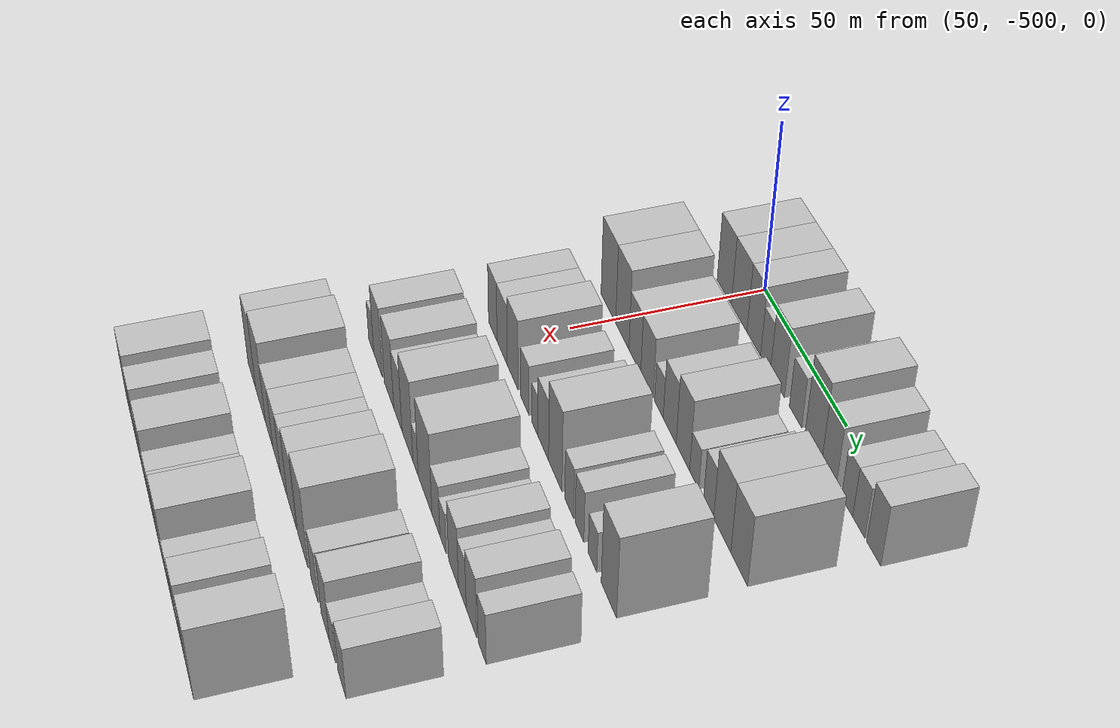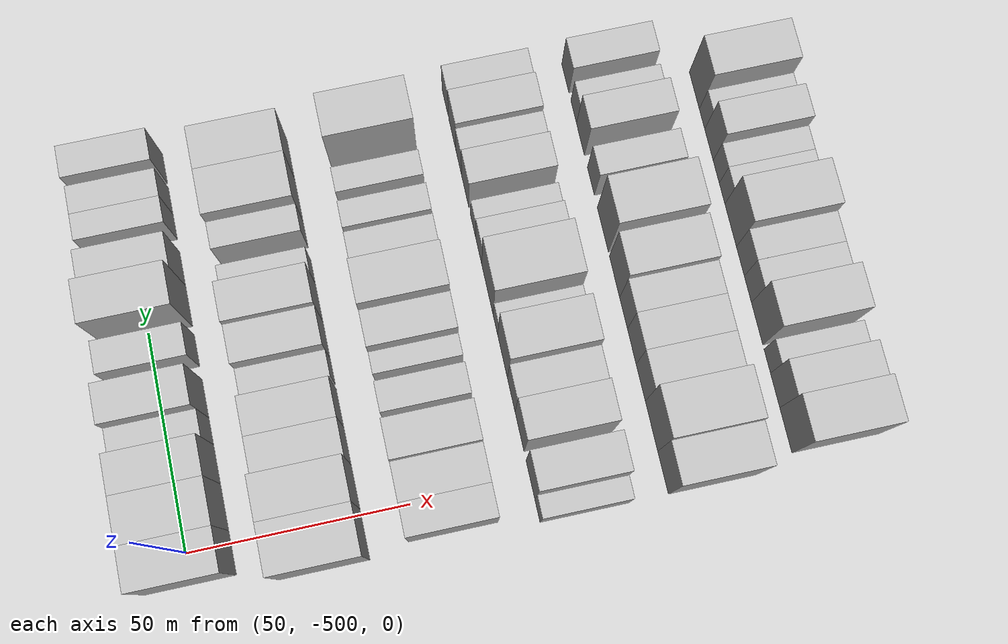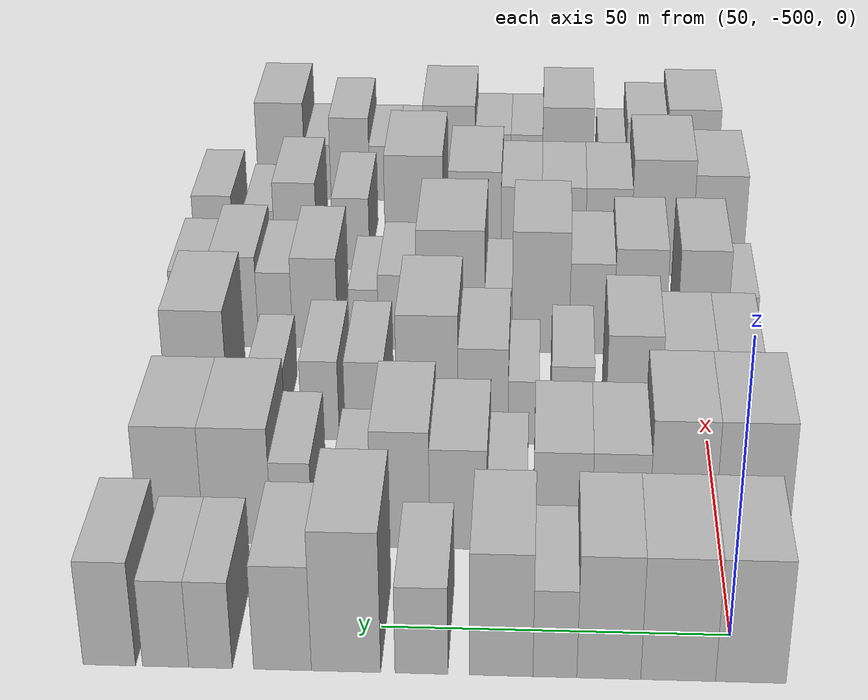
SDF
<sdf version="1.6">
 <world name="default">
  <model name="building_1">
   <static>1</static>
   <pose>50.0000 -502.1199 0 0.000000 0.000000 0.000000</pose>
   <link name="link">
    <pose>0 0 10.50 0 0 0</pose>
    <collision name="collision"><geometry><box><size>20.0000 9.7603 21.0000</size></box></geometry></collision>
    <visual name="visual">
     <cast_shadows>0</cast_shadows>
     <geometry><box><size>20.0000 9.7603 21.0000</size></box></geometry>
     <material>
      <script>
       <uri>model://HANNAS_wall/materials/scripts</uri>
       <uri>model://HANNAS_wall/materials/textures</uri>
       <name>vrc/HANNAS_wall</name>
      </script>
     </material>
    </visual>
   </link>
  </model>
  <model name="building_2">
   <static>1</static>
   <pose>50.0000 -492.0480 0 0.000000 0.000000 0.000000</pose>
   <link name="link">
    <pose>0 0 10.50 0 0 0</pose>
    <collision name="collision"><geometry><box><size>20.0000 10.3834 21.0000</size></box></geometry></collision>
    <visual name="visual">
     <cast_shadows>0</cast_shadows>
     <geometry><box><size>20.0000 10.3834 21.0000</size></box></geometry>
     <material>
      <script>
       <uri>model://HANNAS_wall/materials/scripts</uri>
       <uri>model://HANNAS_wall/materials/textures</uri>
       <name>vrc/HANNAS_wall</name>
      </script>
     </material>
    </visual>
   </link>
  </model>
  <model name="building_3">
   <static>1</static>
   <pose>50.0000 -482.4147 0 0.000000 0.000000 0.000000</pose>
   <link name="link">
    <pose>0 0 10.50 0 0 0</pose>
    <collision name="collision"><geometry><box><size>20.0000 8.8831 21.0000</size></box></geometry></collision>
    <visual name="visual">
     <cast_shadows>0</cast_shadows>
     <geometry><box><size>20.0000 8.8831 21.0000</size></box></geometry>
     <material>
      <script>
       <uri>model://HANNAS_wall/materials/scripts</uri>
       <uri>model://HANNAS_wall/materials/textures</uri>
       <name>vrc/HANNAS_wall</name>
      </script>
     </material>
    </visual>
   </link>
  </model>
  <model name="building_4">
   <static>1</static>
   <pose>50.0000 -474.9057 0 0.000000 0.000000 0.000000</pose>
   <link name="link">
    <pose>0 0 7.50 0 0 0</pose>
    <collision name="collision"><geometry><box><size>20.0000 6.1351 15.0000</size></box></geometry></collision>
    <visual name="visual">
     <cast_shadows>0</cast_shadows>
     <geometry><box><size>20.0000 6.1351 15.0000</size></box></geometry>
     <material>
      <script>
       <uri>model://HANNAS_wall/materials/scripts</uri>
       <uri>model://HANNAS_wall/materials/textures</uri>
       <name>vrc/HANNAS_wall</name>
      </script>
     </material>
    </visual>
   </link>
  </model>
  <model name="building_5">
   <static>1</static>
   <pose>50.0000 -467.4099 0 0.000000 0.000000 0.000000</pose>
   <link name="link">
    <pose>0 0 10.50 0 0 0</pose>
    <collision name="collision"><geometry><box><size>20.0000 8.8565 21.0000</size></box></geometry></collision>
    <visual name="visual">
     <cast_shadows>0</cast_shadows>
     <geometry><box><size>20.0000 8.8565 21.0000</size></box></geometry>
     <material>
      <script>
       <uri>model://HANNAS_wall/materials/scripts</uri>
       <uri>model://HANNAS_wall/materials/textures</uri>
       <name>vrc/HANNAS_wall</name>
      </script>
     </material>
    </visual>
   </link>
  </model>
  <model name="building_6">
   <static>1</static>
   <pose>50.0000 -456.2871 0 0.000000 0.000000 0.000000</pose>
   <link name="link">
    <pose>0 0 7.50 0 0 0</pose>
    <collision name="collision"><geometry><box><size>20.0000 7.3890 15.0000</size></box></geometry></collision>
    <visual name="visual">
     <cast_shadows>0</cast_shadows>
     <geometry><box><size>20.0000 7.3890 15.0000</size></box></geometry>
     <material>
      <script>
       <uri>model://HANNAS_wall/materials/scripts</uri>
       <uri>model://HANNAS_wall/materials/textures</uri>
       <name>vrc/HANNAS_wall</name>
      </script>
     </material>
    </visual>
   </link>
  </model>
  <model name="building_7">
   <static>1</static>
   <pose>50.0000 -445.7349 0 0.000000 0.000000 0.000000</pose>
   <link name="link">
    <pose>0 0 12.00 0 0 0</pose>
    <collision name="collision"><geometry><box><size>20.0000 9.7154 24.0000</size></box></geometry></collision>
    <visual name="visual">
     <cast_shadows>0</cast_shadows>
     <geometry><box><size>20.0000 9.7154 24.0000</size></box></geometry>
     <material>
      <script>
       <uri>model://HANNAS_wall/materials/scripts</uri>
       <uri>model://HANNAS_wall/materials/textures</uri>
       <name>vrc/HANNAS_wall</name>
      </script>
     </material>
    </visual>
   </link>
  </model>
  <model name="building_8">
   <static>1</static>
   <pose>50.0000 -436.8042 0 0.000000 0.000000 0.000000</pose>
   <link name="link">
    <pose>0 0 9.00 0 0 0</pose>
    <collision name="collision"><geometry><box><size>20.0000 8.1459 18.0000</size></box></geometry></collision>
    <visual name="visual">
     <cast_shadows>0</cast_shadows>
     <geometry><box><size>20.0000 8.1459 18.0000</size></box></geometry>
     <material>
      <script>
       <uri>model://HANNAS_wall/materials/scripts</uri>
       <uri>model://HANNAS_wall/materials/textures</uri>
       <name>vrc/HANNAS_wall</name>
      </script>
     </material>
    </visual>
   </link>
  </model>
  <model name="building_9">
   <static>1</static>
   <pose>50.0000 -426.6734 0 0.000000 0.000000 0.000000</pose>
   <link name="link">
    <pose>0 0 7.50 0 0 0</pose>
    <collision name="collision"><geometry><box><size>20.0000 6.1158 15.0000</size></box></geometry></collision>
    <visual name="visual">
     <cast_shadows>0</cast_shadows>
     <geometry><box><size>20.0000 6.1158 15.0000</size></box></geometry>
     <material>
      <script>
       <uri>model://HANNAS_wall/materials/scripts</uri>
       <uri>model://HANNAS_wall/materials/textures</uri>
       <name>vrc/HANNAS_wall</name>
      </script>
     </material>
    </visual>
   </link>
  </model>
  <model name="building_10">
   <static>1</static>
   <pose>50.0000 -420.3480 0 0.000000 0.000000 0.000000</pose>
   <link name="link">
    <pose>0 0 7.50 0 0 0</pose>
    <collision name="collision"><geometry><box><size>20.0000 6.5350 15.0000</size></box></geometry></collision>
    <visual name="visual">
     <cast_shadows>0</cast_shadows>
     <geometry><box><size>20.0000 6.5350 15.0000</size></box></geometry>
     <material>
      <script>
       <uri>model://HANNAS_wall/materials/scripts</uri>
       <uri>model://HANNAS_wall/materials/textures</uri>
       <name>vrc/HANNAS_wall</name>
      </script>
     </material>
    </visual>
   </link>
  </model>
  <model name="building_11">
   <static>1</static>
   <pose>50.0000 -412.3741 0 0.000000 0.000000 0.000000</pose>
   <link name="link">
    <pose>0 0 9.00 0 0 0</pose>
    <collision name="collision"><geometry><box><size>20.0000 7.4129 18.0000</size></box></geometry></collision>
    <visual name="visual">
     <cast_shadows>0</cast_shadows>
     <geometry><box><size>20.0000 7.4129 18.0000</size></box></geometry>
     <material>
      <script>
       <uri>model://HANNAS_wall/materials/scripts</uri>
       <uri>model://HANNAS_wall/materials/textures</uri>
       <name>vrc/HANNAS_wall</name>
      </script>
     </material>
    </visual>
   </link>
  </model>
  <model name="building_120">
   <static>1</static>
   <pose>79.0000 -504.3831 0 0.000000 0.000000 0.000000</pose>
   <link name="link">
    <pose>0 0 12.00 0 0 0</pose>
    <collision name="collision"><geometry><box><size>20.0000 11.2338 24.0000</size></box></geometry></collision>
    <visual name="visual">
     <cast_shadows>0</cast_shadows>
     <geometry><box><size>20.0000 11.2338 24.0000</size></box></geometry>
     <material>
      <script>
       <uri>model://HANNAS_wall/materials/scripts</uri>
       <uri>model://HANNAS_wall/materials/textures</uri>
       <name>vrc/HANNAS_wall</name>
      </script>
     </material>
    </visual>
   </link>
  </model>
  <model name="building_121">
   <static>1</static>
   <pose>79.0000 -493.8356 0 0.000000 0.000000 0.000000</pose>
   <link name="link">
    <pose>0 0 12.00 0 0 0</pose>
    <collision name="collision"><geometry><box><size>20.0000 9.8611 24.0000</size></box></geometry></collision>
    <visual name="visual">
     <cast_shadows>0</cast_shadows>
     <geometry><box><size>20.0000 9.8611 24.0000</size></box></geometry>
     <material>
      <script>
       <uri>model://HANNAS_wall/materials/scripts</uri>
       <uri>model://HANNAS_wall/materials/textures</uri>
       <name>vrc/HANNAS_wall</name>
      </script>
     </material>
    </visual>
   </link>
  </model>
  <model name="building_122">
   <static>1</static>
   <pose>79.0000 -484.6019 0 0.000000 0.000000 0.000000</pose>
   <link name="link">
    <pose>0 0 9.00 0 0 0</pose>
    <collision name="collision"><geometry><box><size>20.0000 8.6065 18.0000</size></box></geometry></collision>
    <visual name="visual">
     <cast_shadows>0</cast_shadows>
     <geometry><box><size>20.0000 8.6065 18.0000</size></box></geometry>
     <material>
      <script>
       <uri>model://HANNAS_wall/materials/scripts</uri>
       <uri>model://HANNAS_wall/materials/textures</uri>
       <name>vrc/HANNAS_wall</name>
      </script>
     </material>
    </visual>
   </link>
  </model>
  <model name="building_123">
   <static>1</static>
   <pose>79.0000 -475.8940 0 0.000000 0.000000 0.000000</pose>
   <link name="link">
    <pose>0 0 9.00 0 0 0</pose>
    <collision name="collision"><geometry><box><size>20.0000 8.8093 18.0000</size></box></geometry></collision>
    <visual name="visual">
     <cast_shadows>0</cast_shadows>
     <geometry><box><size>20.0000 8.8093 18.0000</size></box></geometry>
     <material>
      <script>
       <uri>model://HANNAS_wall/materials/scripts</uri>
       <uri>model://HANNAS_wall/materials/textures</uri>
       <name>vrc/HANNAS_wall</name>
      </script>
     </material>
    </visual>
   </link>
  </model>
  <model name="building_124">
   <static>1</static>
   <pose>79.0000 -467.4973 0 0.000000 0.000000 0.000000</pose>
   <link name="link">
    <pose>0 0 6.00 0 0 0</pose>
    <collision name="collision"><geometry><box><size>20.0000 5.9841 12.0000</size></box></geometry></collision>
    <visual name="visual">
     <cast_shadows>0</cast_shadows>
     <geometry><box><size>20.0000 5.9841 12.0000</size></box></geometry>
     <material>
      <script>
       <uri>model://HANNAS_wall/materials/scripts</uri>
       <uri>model://HANNAS_wall/materials/textures</uri>
       <name>vrc/HANNAS_wall</name>
      </script>
     </material>
    </visual>
   </link>
  </model>
  <model name="building_125">
   <static>1</static>
   <pose>79.0000 -460.1713 0 0.000000 0.000000 0.000000</pose>
   <link name="link">
    <pose>0 0 9.00 0 0 0</pose>
    <collision name="collision"><geometry><box><size>20.0000 8.6680 18.0000</size></box></geometry></collision>
    <visual name="visual">
     <cast_shadows>0</cast_shadows>
     <geometry><box><size>20.0000 8.6680 18.0000</size></box></geometry>
     <material>
      <script>
       <uri>model://HANNAS_wall/materials/scripts</uri>
       <uri>model://HANNAS_wall/materials/textures</uri>
       <name>vrc/HANNAS_wall</name>
      </script>
     </material>
    </visual>
   </link>
  </model>
  <model name="building_126">
   <static>1</static>
   <pose>79.0000 -451.3788 0 0.000000 0.000000 0.000000</pose>
   <link name="link">
    <pose>0 0 10.50 0 0 0</pose>
    <collision name="collision"><geometry><box><size>20.0000 8.9171 21.0000</size></box></geometry></collision>
    <visual name="visual">
     <cast_shadows>0</cast_shadows>
     <geometry><box><size>20.0000 8.9171 21.0000</size></box></geometry>
     <material>
      <script>
       <uri>model://HANNAS_wall/materials/scripts</uri>
       <uri>model://HANNAS_wall/materials/textures</uri>
       <name>vrc/HANNAS_wall</name>
      </script>
     </material>
    </visual>
   </link>
  </model>
  <model name="building_127">
   <static>1</static>
   <pose>79.0000 -443.9622 0 0.000000 0.000000 0.000000</pose>
   <link name="link">
    <pose>0 0 6.00 0 0 0</pose>
    <collision name="collision"><geometry><box><size>20.0000 5.9160 12.0000</size></box></geometry></collision>
    <visual name="visual">
     <cast_shadows>0</cast_shadows>
     <geometry><box><size>20.0000 5.9160 12.0000</size></box></geometry>
     <material>
      <script>
       <uri>model://HANNAS_wall/materials/scripts</uri>
       <uri>model://HANNAS_wall/materials/textures</uri>
       <name>vrc/HANNAS_wall</name>
      </script>
     </material>
    </visual>
   </link>
  </model>
  <model name="building_128">
   <static>1</static>
   <pose>79.0000 -434.8853 0 0.000000 0.000000 0.000000</pose>
   <link name="link">
    <pose>0 0 7.50 0 0 0</pose>
    <collision name="collision"><geometry><box><size>20.0000 6.2379 15.0000</size></box></geometry></collision>
    <visual name="visual">
     <cast_shadows>0</cast_shadows>
     <geometry><box><size>20.0000 6.2379 15.0000</size></box></geometry>
     <material>
      <script>
       <uri>model://HANNAS_wall/materials/scripts</uri>
       <uri>model://HANNAS_wall/materials/textures</uri>
       <name>vrc/HANNAS_wall</name>
      </script>
     </material>
    </visual>
   </link>
  </model>
  <model name="building_129">
   <static>1</static>
   <pose>79.0000 -426.5535 0 0.000000 0.000000 0.000000</pose>
   <link name="link">
    <pose>0 0 10.50 0 0 0</pose>
    <collision name="collision"><geometry><box><size>20.0000 10.4257 21.0000</size></box></geometry></collision>
    <visual name="visual">
     <cast_shadows>0</cast_shadows>
     <geometry><box><size>20.0000 10.4257 21.0000</size></box></geometry>
     <material>
      <script>
       <uri>model://HANNAS_wall/materials/scripts</uri>
       <uri>model://HANNAS_wall/materials/textures</uri>
       <name>vrc/HANNAS_wall</name>
      </script>
     </material>
    </visual>
   </link>
  </model>
  <model name="building_130">
   <static>1</static>
   <pose>79.0000 -416.3669 0 0.000000 0.000000 0.000000</pose>
   <link name="link">
    <pose>0 0 10.50 0 0 0</pose>
    <collision name="collision"><geometry><box><size>20.0000 9.9475 21.0000</size></box></geometry></collision>
    <visual name="visual">
     <cast_shadows>0</cast_shadows>
     <geometry><box><size>20.0000 9.9475 21.0000</size></box></geometry>
     <material>
      <script>
       <uri>model://HANNAS_wall/materials/scripts</uri>
       <uri>model://HANNAS_wall/materials/textures</uri>
       <name>vrc/HANNAS_wall</name>
      </script>
     </material>
    </visual>
   </link>
  </model>
  <model name="building_237">
   <static>1</static>
   <pose>108.0000 -504.3012 0 0.000000 0.000000 0.000000</pose>
   <link name="link">
    <pose>0 0 9.00 0 0 0</pose>
    <collision name="collision"><geometry><box><size>20.0000 7.3976 18.0000</size></box></geometry></collision>
    <visual name="visual">
     <cast_shadows>0</cast_shadows>
     <geometry><box><size>20.0000 7.3976 18.0000</size></box></geometry>
     <material>
      <script>
       <uri>model://HANNAS_wall/materials/scripts</uri>
       <uri>model://HANNAS_wall/materials/textures</uri>
       <name>vrc/HANNAS_wall</name>
      </script>
     </material>
    </visual>
   </link>
  </model>
  <model name="building_238">
   <static>1</static>
   <pose>108.0000 -496.2672 0 0.000000 0.000000 0.000000</pose>
   <link name="link">
    <pose>0 0 9.00 0 0 0</pose>
    <collision name="collision"><geometry><box><size>20.0000 8.6705 18.0000</size></box></geometry></collision>
    <visual name="visual">
     <cast_shadows>0</cast_shadows>
     <geometry><box><size>20.0000 8.6705 18.0000</size></box></geometry>
     <material>
      <script>
       <uri>model://HANNAS_wall/materials/scripts</uri>
       <uri>model://HANNAS_wall/materials/textures</uri>
       <name>vrc/HANNAS_wall</name>
      </script>
     </material>
    </visual>
   </link>
  </model>
  <model name="building_239">
   <static>1</static>
   <pose>108.0000 -487.4597 0 0.000000 0.000000 0.000000</pose>
   <link name="link">
    <pose>0 0 10.50 0 0 0</pose>
    <collision name="collision"><geometry><box><size>20.0000 8.9444 21.0000</size></box></geometry></collision>
    <visual name="visual">
     <cast_shadows>0</cast_shadows>
     <geometry><box><size>20.0000 8.9444 21.0000</size></box></geometry>
     <material>
      <script>
       <uri>model://HANNAS_wall/materials/scripts</uri>
       <uri>model://HANNAS_wall/materials/textures</uri>
       <name>vrc/HANNAS_wall</name>
      </script>
     </material>
    </visual>
   </link>
  </model>
  <model name="building_240">
   <static>1</static>
   <pose>108.0000 -477.5289 0 0.000000 0.000000 0.000000</pose>
   <link name="link">
    <pose>0 0 7.50 0 0 0</pose>
    <collision name="collision"><geometry><box><size>20.0000 6.9174 15.0000</size></box></geometry></collision>
    <visual name="visual">
     <cast_shadows>0</cast_shadows>
     <geometry><box><size>20.0000 6.9174 15.0000</size></box></geometry>
     <material>
      <script>
       <uri>model://HANNAS_wall/materials/scripts</uri>
       <uri>model://HANNAS_wall/materials/textures</uri>
       <name>vrc/HANNAS_wall</name>
      </script>
     </material>
    </visual>
   </link>
  </model>
  <model name="building_241">
   <static>1</static>
   <pose>108.0000 -469.5776 0 0.000000 0.000000 0.000000</pose>
   <link name="link">
    <pose>0 0 6.00 0 0 0</pose>
    <collision name="collision"><geometry><box><size>20.0000 4.9850 12.0000</size></box></geometry></collision>
    <visual name="visual">
     <cast_shadows>0</cast_shadows>
     <geometry><box><size>20.0000 4.9850 12.0000</size></box></geometry>
     <material>
      <script>
       <uri>model://HANNAS_wall/materials/scripts</uri>
       <uri>model://HANNAS_wall/materials/textures</uri>
       <name>vrc/HANNAS_wall</name>
      </script>
     </material>
    </visual>
   </link>
  </model>
  <model name="building_242">
   <static>1</static>
   <pose>108.0000 -462.9899 0 0.000000 0.000000 0.000000</pose>
   <link name="link">
    <pose>0 0 9.00 0 0 0</pose>
    <collision name="collision"><geometry><box><size>20.0000 8.1905 18.0000</size></box></geometry></collision>
    <visual name="visual">
     <cast_shadows>0</cast_shadows>
     <geometry><box><size>20.0000 8.1905 18.0000</size></box></geometry>
     <material>
      <script>
       <uri>model://HANNAS_wall/materials/scripts</uri>
       <uri>model://HANNAS_wall/materials/textures</uri>
       <name>vrc/HANNAS_wall</name>
      </script>
     </material>
    </visual>
   </link>
  </model>
  <model name="building_243">
   <static>1</static>
   <pose>108.0000 -453.8762 0 0.000000 0.000000 0.000000</pose>
   <link name="link">
    <pose>0 0 12.00 0 0 0</pose>
    <collision name="collision"><geometry><box><size>20.0000 10.0370 24.0000</size></box></geometry></collision>
    <visual name="visual">
     <cast_shadows>0</cast_shadows>
     <geometry><box><size>20.0000 10.0370 24.0000</size></box></geometry>
     <material>
      <script>
       <uri>model://HANNAS_wall/materials/scripts</uri>
       <uri>model://HANNAS_wall/materials/textures</uri>
       <name>vrc/HANNAS_wall</name>
      </script>
     </material>
    </visual>
   </link>
  </model>
  <model name="building_244">
   <static>1</static>
   <pose>108.0000 -443.6097 0 0.000000 0.000000 0.000000</pose>
   <link name="link">
    <pose>0 0 7.50 0 0 0</pose>
    <collision name="collision"><geometry><box><size>20.0000 6.4960 15.0000</size></box></geometry></collision>
    <visual name="visual">
     <cast_shadows>0</cast_shadows>
     <geometry><box><size>20.0000 6.4960 15.0000</size></box></geometry>
     <material>
      <script>
       <uri>model://HANNAS_wall/materials/scripts</uri>
       <uri>model://HANNAS_wall/materials/textures</uri>
       <name>vrc/HANNAS_wall</name>
      </script>
     </material>
    </visual>
   </link>
  </model>
  <model name="building_245">
   <static>1</static>
   <pose>108.0000 -436.2624 0 0.000000 0.000000 0.000000</pose>
   <link name="link">
    <pose>0 0 7.50 0 0 0</pose>
    <collision name="collision"><geometry><box><size>20.0000 6.1988 15.0000</size></box></geometry></collision>
    <visual name="visual">
     <cast_shadows>0</cast_shadows>
     <geometry><box><size>20.0000 6.1988 15.0000</size></box></geometry>
     <material>
      <script>
       <uri>model://HANNAS_wall/materials/scripts</uri>
       <uri>model://HANNAS_wall/materials/textures</uri>
       <name>vrc/HANNAS_wall</name>
      </script>
     </material>
    </visual>
   </link>
  </model>
  <model name="building_246">
   <static>1</static>
   <pose>108.0000 -427.1921 0 0.000000 0.000000 0.000000</pose>
   <link name="link">
    <pose>0 0 6.00 0 0 0</pose>
    <collision name="collision"><geometry><box><size>20.0000 5.9418 12.0000</size></box></geometry></collision>
    <visual name="visual">
     <cast_shadows>0</cast_shadows>
     <geometry><box><size>20.0000 5.9418 12.0000</size></box></geometry>
     <material>
      <script>
       <uri>model://HANNAS_wall/materials/scripts</uri>
       <uri>model://HANNAS_wall/materials/textures</uri>
       <name>vrc/HANNAS_wall</name>
      </script>
     </material>
    </visual>
   </link>
  </model>
  <model name="building_247">
   <static>1</static>
   <pose>108.0000 -416.1398 0 0.000000 0.000000 0.000000</pose>
   <link name="link">
    <pose>0 0 12.00 0 0 0</pose>
    <collision name="collision"><geometry><box><size>20.0000 10.1628 24.0000</size></box></geometry></collision>
    <visual name="visual">
     <cast_shadows>0</cast_shadows>
     <geometry><box><size>20.0000 10.1628 24.0000</size></box></geometry>
     <material>
      <script>
       <uri>model://HANNAS_wall/materials/scripts</uri>
       <uri>model://HANNAS_wall/materials/textures</uri>
       <name>vrc/HANNAS_wall</name>
      </script>
     </material>
    </visual>
   </link>
  </model>
  <model name="building_348">
   <static>1</static>
   <pose>137.0000 -507.4285 0 0.000000 0.000000 0.000000</pose>
   <link name="link">
    <pose>0 0 6.00 0 0 0</pose>
    <collision name="collision"><geometry><box><size>20.0000 5.1430 12.0000</size></box></geometry></collision>
    <visual name="visual">
     <cast_shadows>0</cast_shadows>
     <geometry><box><size>20.0000 5.1430 12.0000</size></box></geometry>
     <material>
      <script>
       <uri>model://HANNAS_wall/materials/scripts</uri>
       <uri>model://HANNAS_wall/materials/textures</uri>
       <name>vrc/HANNAS_wall</name>
      </script>
     </material>
    </visual>
   </link>
  </model>
  <model name="building_349">
   <static>1</static>
   <pose>137.0000 -500.4716 0 0.000000 0.000000 0.000000</pose>
   <link name="link">
    <pose>0 0 10.50 0 0 0</pose>
    <collision name="collision"><geometry><box><size>20.0000 8.7707 21.0000</size></box></geometry></collision>
    <visual name="visual">
     <cast_shadows>0</cast_shadows>
     <geometry><box><size>20.0000 8.7707 21.0000</size></box></geometry>
     <material>
      <script>
       <uri>model://HANNAS_wall/materials/scripts</uri>
       <uri>model://HANNAS_wall/materials/textures</uri>
       <name>vrc/HANNAS_wall</name>
      </script>
     </material>
    </visual>
   </link>
  </model>
  <model name="building_350">
   <static>1</static>
   <pose>137.0000 -489.5493 0 0.000000 0.000000 0.000000</pose>
   <link name="link">
    <pose>0 0 10.50 0 0 0</pose>
    <collision name="collision"><geometry><box><size>20.0000 9.0739 21.0000</size></box></geometry></collision>
    <visual name="visual">
     <cast_shadows>0</cast_shadows>
     <geometry><box><size>20.0000 9.0739 21.0000</size></box></geometry>
     <material>
      <script>
       <uri>model://HANNAS_wall/materials/scripts</uri>
       <uri>model://HANNAS_wall/materials/textures</uri>
       <name>vrc/HANNAS_wall</name>
      </script>
     </material>
    </visual>
   </link>
  </model>
  <model name="building_351">
   <static>1</static>
   <pose>137.0000 -481.1141 0 0.000000 0.000000 0.000000</pose>
   <link name="link">
    <pose>0 0 9.00 0 0 0</pose>
    <collision name="collision"><geometry><box><size>20.0000 7.7965 18.0000</size></box></geometry></collision>
    <visual name="visual">
     <cast_shadows>0</cast_shadows>
     <geometry><box><size>20.0000 7.7965 18.0000</size></box></geometry>
     <material>
      <script>
       <uri>model://HANNAS_wall/materials/scripts</uri>
       <uri>model://HANNAS_wall/materials/textures</uri>
       <name>vrc/HANNAS_wall</name>
      </script>
     </material>
    </visual>
   </link>
  </model>
  <model name="building_352">
   <static>1</static>
   <pose>137.0000 -472.1802 0 0.000000 0.000000 0.000000</pose>
   <link name="link">
    <pose>0 0 12.00 0 0 0</pose>
    <collision name="collision"><geometry><box><size>20.0000 10.0712 24.0000</size></box></geometry></collision>
    <visual name="visual">
     <cast_shadows>0</cast_shadows>
     <geometry><box><size>20.0000 10.0712 24.0000</size></box></geometry>
     <material>
      <script>
       <uri>model://HANNAS_wall/materials/scripts</uri>
       <uri>model://HANNAS_wall/materials/textures</uri>
       <name>vrc/HANNAS_wall</name>
      </script>
     </material>
    </visual>
   </link>
  </model>
  <model name="building_353">
   <static>1</static>
   <pose>137.0000 -464.7385 0 0.000000 0.000000 0.000000</pose>
   <link name="link">
    <pose>0 0 6.00 0 0 0</pose>
    <collision name="collision"><geometry><box><size>20.0000 4.8123 12.0000</size></box></geometry></collision>
    <visual name="visual">
     <cast_shadows>0</cast_shadows>
     <geometry><box><size>20.0000 4.8123 12.0000</size></box></geometry>
     <material>
      <script>
       <uri>model://HANNAS_wall/materials/scripts</uri>
       <uri>model://HANNAS_wall/materials/textures</uri>
       <name>vrc/HANNAS_wall</name>
      </script>
     </material>
    </visual>
   </link>
  </model>
  <model name="building_354">
   <static>1</static>
   <pose>137.0000 -456.3686 0 0.000000 0.000000 0.000000</pose>
   <link name="link">
    <pose>0 0 12.00 0 0 0</pose>
    <collision name="collision"><geometry><box><size>20.0000 11.9274 24.0000</size></box></geometry></collision>
    <visual name="visual">
     <cast_shadows>0</cast_shadows>
     <geometry><box><size>20.0000 11.9274 24.0000</size></box></geometry>
     <material>
      <script>
       <uri>model://HANNAS_wall/materials/scripts</uri>
       <uri>model://HANNAS_wall/materials/textures</uri>
       <name>vrc/HANNAS_wall</name>
      </script>
     </material>
    </visual>
   </link>
  </model>
  <model name="building_355">
   <static>1</static>
   <pose>137.0000 -447.0163 0 0.000000 0.000000 0.000000</pose>
   <link name="link">
    <pose>0 0 7.50 0 0 0</pose>
    <collision name="collision"><geometry><box><size>20.0000 6.7772 15.0000</size></box></geometry></collision>
    <visual name="visual">
     <cast_shadows>0</cast_shadows>
     <geometry><box><size>20.0000 6.7772 15.0000</size></box></geometry>
     <material>
      <script>
       <uri>model://HANNAS_wall/materials/scripts</uri>
       <uri>model://HANNAS_wall/materials/textures</uri>
       <name>vrc/HANNAS_wall</name>
      </script>
     </material>
    </visual>
   </link>
  </model>
  <model name="building_356">
   <static>1</static>
   <pose>137.0000 -441.0285 0 0.000000 0.000000 0.000000</pose>
   <link name="link">
    <pose>0 0 6.00 0 0 0</pose>
    <collision name="collision"><geometry><box><size>20.0000 5.1984 12.0000</size></box></geometry></collision>
    <visual name="visual">
     <cast_shadows>0</cast_shadows>
     <geometry><box><size>20.0000 5.1984 12.0000</size></box></geometry>
     <material>
      <script>
       <uri>model://HANNAS_wall/materials/scripts</uri>
       <uri>model://HANNAS_wall/materials/textures</uri>
       <name>vrc/HANNAS_wall</name>
      </script>
     </material>
    </visual>
   </link>
  </model>
  <model name="building_357">
   <static>1</static>
   <pose>137.0000 -432.4082 0 0.000000 0.000000 0.000000</pose>
   <link name="link">
    <pose>0 0 9.00 0 0 0</pose>
    <collision name="collision"><geometry><box><size>20.0000 8.0423 18.0000</size></box></geometry></collision>
    <visual name="visual">
     <cast_shadows>0</cast_shadows>
     <geometry><box><size>20.0000 8.0423 18.0000</size></box></geometry>
     <material>
      <script>
       <uri>model://HANNAS_wall/materials/scripts</uri>
       <uri>model://HANNAS_wall/materials/textures</uri>
       <name>vrc/HANNAS_wall</name>
      </script>
     </material>
    </visual>
   </link>
  </model>
  <model name="building_358">
   <static>1</static>
   <pose>137.0000 -425.3429 0 0.000000 0.000000 0.000000</pose>
   <link name="link">
    <pose>0 0 7.50 0 0 0</pose>
    <collision name="collision"><geometry><box><size>20.0000 6.0883 15.0000</size></box></geometry></collision>
    <visual name="visual">
     <cast_shadows>0</cast_shadows>
     <geometry><box><size>20.0000 6.0883 15.0000</size></box></geometry>
     <material>
      <script>
       <uri>model://HANNAS_wall/materials/scripts</uri>
       <uri>model://HANNAS_wall/materials/textures</uri>
       <name>vrc/HANNAS_wall</name>
      </script>
     </material>
    </visual>
   </link>
  </model>
  <model name="building_359">
   <static>1</static>
   <pose>137.0000 -418.2054 0 0.000000 0.000000 0.000000</pose>
   <link name="link">
    <pose>0 0 9.00 0 0 0</pose>
    <collision name="collision"><geometry><box><size>20.0000 8.1867 18.0000</size></box></geometry></collision>
    <visual name="visual">
     <cast_shadows>0</cast_shadows>
     <geometry><box><size>20.0000 8.1867 18.0000</size></box></geometry>
     <material>
      <script>
       <uri>model://HANNAS_wall/materials/scripts</uri>
       <uri>model://HANNAS_wall/materials/textures</uri>
       <name>vrc/HANNAS_wall</name>
      </script>
     </material>
    </visual>
   </link>
  </model>
  <model name="building_360">
   <static>1</static>
   <pose>137.0000 -410.0502 0 0.000000 0.000000 0.000000</pose>
   <link name="link">
    <pose>0 0 7.50 0 0 0</pose>
    <collision name="collision"><geometry><box><size>20.0000 6.1238 15.0000</size></box></geometry></collision>
    <visual name="visual">
     <cast_shadows>0</cast_shadows>
     <geometry><box><size>20.0000 6.1238 15.0000</size></box></geometry>
     <material>
      <script>
       <uri>model://HANNAS_wall/materials/scripts</uri>
       <uri>model://HANNAS_wall/materials/textures</uri>
       <name>vrc/HANNAS_wall</name>
      </script>
     </material>
    </visual>
   </link>
  </model>
  <model name="building_466">
   <static>1</static>
   <pose>166.0000 -505.1693 0 0.000000 0.000000 0.000000</pose>
   <link name="link">
    <pose>0 0 10.50 0 0 0</pose>
    <collision name="collision"><geometry><box><size>20.0000 9.6614 21.0000</size></box></geometry></collision>
    <visual name="visual">
     <cast_shadows>0</cast_shadows>
     <geometry><box><size>20.0000 9.6614 21.0000</size></box></geometry>
     <material>
      <script>
       <uri>model://HANNAS_wall/materials/scripts</uri>
       <uri>model://HANNAS_wall/materials/textures</uri>
       <name>vrc/HANNAS_wall</name>
      </script>
     </material>
    </visual>
   </link>
  </model>
  <model name="building_467">
   <static>1</static>
   <pose>166.0000 -494.6072 0 0.000000 0.000000 0.000000</pose>
   <link name="link">
    <pose>0 0 12.00 0 0 0</pose>
    <collision name="collision"><geometry><box><size>20.0000 11.4627 24.0000</size></box></geometry></collision>
    <visual name="visual">
     <cast_shadows>0</cast_shadows>
     <geometry><box><size>20.0000 11.4627 24.0000</size></box></geometry>
     <material>
      <script>
       <uri>model://HANNAS_wall/materials/scripts</uri>
       <uri>model://HANNAS_wall/materials/textures</uri>
       <name>vrc/HANNAS_wall</name>
      </script>
     </material>
    </visual>
   </link>
  </model>
  <model name="building_468">
   <static>1</static>
   <pose>166.0000 -484.5934 0 0.000000 0.000000 0.000000</pose>
   <link name="link">
    <pose>0 0 9.00 0 0 0</pose>
    <collision name="collision"><geometry><box><size>20.0000 8.5649 18.0000</size></box></geometry></collision>
    <visual name="visual">
     <cast_shadows>0</cast_shadows>
     <geometry><box><size>20.0000 8.5649 18.0000</size></box></geometry>
     <material>
      <script>
       <uri>model://HANNAS_wall/materials/scripts</uri>
       <uri>model://HANNAS_wall/materials/textures</uri>
       <name>vrc/HANNAS_wall</name>
      </script>
     </material>
    </visual>
   </link>
  </model>
  <model name="building_469">
   <static>1</static>
   <pose>166.0000 -476.1674 0 0.000000 0.000000 0.000000</pose>
   <link name="link">
    <pose>0 0 9.00 0 0 0</pose>
    <collision name="collision"><geometry><box><size>20.0000 8.2871 18.0000</size></box></geometry></collision>
    <visual name="visual">
     <cast_shadows>0</cast_shadows>
     <geometry><box><size>20.0000 8.2871 18.0000</size></box></geometry>
     <material>
      <script>
       <uri>model://HANNAS_wall/materials/scripts</uri>
       <uri>model://HANNAS_wall/materials/textures</uri>
       <name>vrc/HANNAS_wall</name>
      </script>
     </material>
    </visual>
   </link>
  </model>
  <model name="building_470">
   <static>1</static>
   <pose>166.0000 -468.2584 0 0.000000 0.000000 0.000000</pose>
   <link name="link">
    <pose>0 0 9.00 0 0 0</pose>
    <collision name="collision"><geometry><box><size>20.0000 7.5310 18.0000</size></box></geometry></collision>
    <visual name="visual">
     <cast_shadows>0</cast_shadows>
     <geometry><box><size>20.0000 7.5310 18.0000</size></box></geometry>
     <material>
      <script>
       <uri>model://HANNAS_wall/materials/scripts</uri>
       <uri>model://HANNAS_wall/materials/textures</uri>
       <name>vrc/HANNAS_wall</name>
      </script>
     </material>
    </visual>
   </link>
  </model>
  <model name="building_471">
   <static>1</static>
   <pose>166.0000 -459.5432 0 0.000000 0.000000 0.000000</pose>
   <link name="link">
    <pose>0 0 10.50 0 0 0</pose>
    <collision name="collision"><geometry><box><size>20.0000 9.8994 21.0000</size></box></geometry></collision>
    <visual name="visual">
     <cast_shadows>0</cast_shadows>
     <geometry><box><size>20.0000 9.8994 21.0000</size></box></geometry>
     <material>
      <script>
       <uri>model://HANNAS_wall/materials/scripts</uri>
       <uri>model://HANNAS_wall/materials/textures</uri>
       <name>vrc/HANNAS_wall</name>
      </script>
     </material>
    </visual>
   </link>
  </model>
  <model name="building_472">
   <static>1</static>
   <pose>166.0000 -448.1556 0 0.000000 0.000000 0.000000</pose>
   <link name="link">
    <pose>0 0 12.00 0 0 0</pose>
    <collision name="collision"><geometry><box><size>20.0000 10.8758 24.0000</size></box></geometry></collision>
    <visual name="visual">
     <cast_shadows>0</cast_shadows>
     <geometry><box><size>20.0000 10.8758 24.0000</size></box></geometry>
     <material>
      <script>
       <uri>model://HANNAS_wall/materials/scripts</uri>
       <uri>model://HANNAS_wall/materials/textures</uri>
       <name>vrc/HANNAS_wall</name>
      </script>
     </material>
    </visual>
   </link>
  </model>
  <model name="building_473">
   <static>1</static>
   <pose>166.0000 -436.2511 0 0.000000 0.000000 0.000000</pose>
   <link name="link">
    <pose>0 0 7.50 0 0 0</pose>
    <collision name="collision"><geometry><box><size>20.0000 6.9331 15.0000</size></box></geometry></collision>
    <visual name="visual">
     <cast_shadows>0</cast_shadows>
     <geometry><box><size>20.0000 6.9331 15.0000</size></box></geometry>
     <material>
      <script>
       <uri>model://HANNAS_wall/materials/scripts</uri>
       <uri>model://HANNAS_wall/materials/textures</uri>
       <name>vrc/HANNAS_wall</name>
      </script>
     </material>
    </visual>
   </link>
  </model>
  <model name="building_474">
   <static>1</static>
   <pose>166.0000 -425.7830 0 0.000000 0.000000 0.000000</pose>
   <link name="link">
    <pose>0 0 9.00 0 0 0</pose>
    <collision name="collision"><geometry><box><size>20.0000 8.0032 18.0000</size></box></geometry></collision>
    <visual name="visual">
     <cast_shadows>0</cast_shadows>
     <geometry><box><size>20.0000 8.0032 18.0000</size></box></geometry>
     <material>
      <script>
       <uri>model://HANNAS_wall/materials/scripts</uri>
       <uri>model://HANNAS_wall/materials/textures</uri>
       <name>vrc/HANNAS_wall</name>
      </script>
     </material>
    </visual>
   </link>
  </model>
  <model name="building_475">
   <static>1</static>
   <pose>166.0000 -418.8769 0 0.000000 0.000000 0.000000</pose>
   <link name="link">
    <pose>0 0 6.00 0 0 0</pose>
    <collision name="collision"><geometry><box><size>20.0000 5.8089 12.0000</size></box></geometry></collision>
    <visual name="visual">
     <cast_shadows>0</cast_shadows>
     <geometry><box><size>20.0000 5.8089 12.0000</size></box></geometry>
     <material>
      <script>
       <uri>model://HANNAS_wall/materials/scripts</uri>
       <uri>model://HANNAS_wall/materials/textures</uri>
       <name>vrc/HANNAS_wall</name>
      </script>
     </material>
    </visual>
   </link>
  </model>
  <model name="building_476">
   <static>1</static>
   <pose>166.0000 -410.2589 0 0.000000 0.000000 0.000000</pose>
   <link name="link">
    <pose>0 0 7.50 0 0 0</pose>
    <collision name="collision"><geometry><box><size>20.0000 7.4272 15.0000</size></box></geometry></collision>
    <visual name="visual">
     <cast_shadows>0</cast_shadows>
     <geometry><box><size>20.0000 7.4272 15.0000</size></box></geometry>
     <material>
      <script>
       <uri>model://HANNAS_wall/materials/scripts</uri>
       <uri>model://HANNAS_wall/materials/textures</uri>
       <name>vrc/HANNAS_wall</name>
      </script>
     </material>
    </visual>
   </link>
  </model>
  <model name="building_577">
   <static>1</static>
   <pose>195.0000 -501.8333 0 0.000000 0.000000 0.000000</pose>
   <link name="link">
    <pose>0 0 10.50 0 0 0</pose>
    <collision name="collision"><geometry><box><size>20.0000 10.3334 21.0000</size></box></geometry></collision>
    <visual name="visual">
     <cast_shadows>0</cast_shadows>
     <geometry><box><size>20.0000 10.3334 21.0000</size></box></geometry>
     <material>
      <script>
       <uri>model://HANNAS_wall/materials/scripts</uri>
       <uri>model://HANNAS_wall/materials/textures</uri>
       <name>vrc/HANNAS_wall</name>
      </script>
     </material>
    </visual>
   </link>
  </model>
  <model name="building_578">
   <static>1</static>
   <pose>195.0000 -492.6663 0 0.000000 0.000000 0.000000</pose>
   <link name="link">
    <pose>0 0 9.00 0 0 0</pose>
    <collision name="collision"><geometry><box><size>20.0000 8.0007 18.0000</size></box></geometry></collision>
    <visual name="visual">
     <cast_shadows>0</cast_shadows>
     <geometry><box><size>20.0000 8.0007 18.0000</size></box></geometry>
     <material>
      <script>
       <uri>model://HANNAS_wall/materials/scripts</uri>
       <uri>model://HANNAS_wall/materials/textures</uri>
       <name>vrc/HANNAS_wall</name>
      </script>
     </material>
    </visual>
   </link>
  </model>
  <model name="building_579">
   <static>1</static>
   <pose>195.0000 -485.8685 0 0.000000 0.000000 0.000000</pose>
   <link name="link">
    <pose>0 0 6.00 0 0 0</pose>
    <collision name="collision"><geometry><box><size>20.0000 5.5949 12.0000</size></box></geometry></collision>
    <visual name="visual">
     <cast_shadows>0</cast_shadows>
     <geometry><box><size>20.0000 5.5949 12.0000</size></box></geometry>
     <material>
      <script>
       <uri>model://HANNAS_wall/materials/scripts</uri>
       <uri>model://HANNAS_wall/materials/textures</uri>
       <name>vrc/HANNAS_wall</name>
      </script>
     </material>
    </visual>
   </link>
  </model>
  <model name="building_580">
   <static>1</static>
   <pose>195.0000 -477.0521 0 0.000000 0.000000 0.000000</pose>
   <link name="link">
    <pose>0 0 10.50 0 0 0</pose>
    <collision name="collision"><geometry><box><size>20.0000 10.0378 21.0000</size></box></geometry></collision>
    <visual name="visual">
     <cast_shadows>0</cast_shadows>
     <geometry><box><size>20.0000 10.0378 21.0000</size></box></geometry>
     <material>
      <script>
       <uri>model://HANNAS_wall/materials/scripts</uri>
       <uri>model://HANNAS_wall/materials/textures</uri>
       <name>vrc/HANNAS_wall</name>
      </script>
     </material>
    </visual>
   </link>
  </model>
  <model name="building_581">
   <static>1</static>
   <pose>195.0000 -468.8812 0 0.000000 0.000000 0.000000</pose>
   <link name="link">
    <pose>0 0 7.50 0 0 0</pose>
    <collision name="collision"><geometry><box><size>20.0000 6.3041 15.0000</size></box></geometry></collision>
    <visual name="visual">
     <cast_shadows>0</cast_shadows>
     <geometry><box><size>20.0000 6.3041 15.0000</size></box></geometry>
     <material>
      <script>
       <uri>model://HANNAS_wall/materials/scripts</uri>
       <uri>model://HANNAS_wall/materials/textures</uri>
       <name>vrc/HANNAS_wall</name>
      </script>
     </material>
    </visual>
   </link>
  </model>
  <model name="building_582">
   <static>1</static>
   <pose>195.0000 -462.1718 0 0.000000 0.000000 0.000000</pose>
   <link name="link">
    <pose>0 0 7.50 0 0 0</pose>
    <collision name="collision"><geometry><box><size>20.0000 7.1146 15.0000</size></box></geometry></collision>
    <visual name="visual">
     <cast_shadows>0</cast_shadows>
     <geometry><box><size>20.0000 7.1146 15.0000</size></box></geometry>
     <material>
      <script>
       <uri>model://HANNAS_wall/materials/scripts</uri>
       <uri>model://HANNAS_wall/materials/textures</uri>
       <name>vrc/HANNAS_wall</name>
      </script>
     </material>
    </visual>
   </link>
  </model>
  <model name="building_583">
   <static>1</static>
   <pose>195.0000 -453.3921 0 0.000000 0.000000 0.000000</pose>
   <link name="link">
    <pose>0 0 10.50 0 0 0</pose>
    <collision name="collision"><geometry><box><size>20.0000 10.4449 21.0000</size></box></geometry></collision>
    <visual name="visual">
     <cast_shadows>0</cast_shadows>
     <geometry><box><size>20.0000 10.4449 21.0000</size></box></geometry>
     <material>
      <script>
       <uri>model://HANNAS_wall/materials/scripts</uri>
       <uri>model://HANNAS_wall/materials/textures</uri>
       <name>vrc/HANNAS_wall</name>
      </script>
     </material>
    </visual>
   </link>
  </model>
  <model name="building_584">
   <static>1</static>
   <pose>195.0000 -445.5930 0 0.000000 0.000000 0.000000</pose>
   <link name="link">
    <pose>0 0 6.00 0 0 0</pose>
    <collision name="collision"><geometry><box><size>20.0000 5.1532 12.0000</size></box></geometry></collision>
    <visual name="visual">
     <cast_shadows>0</cast_shadows>
     <geometry><box><size>20.0000 5.1532 12.0000</size></box></geometry>
     <material>
      <script>
       <uri>model://HANNAS_wall/materials/scripts</uri>
       <uri>model://HANNAS_wall/materials/textures</uri>
       <name>vrc/HANNAS_wall</name>
      </script>
     </material>
    </visual>
   </link>
  </model>
  <model name="building_585">
   <static>1</static>
   <pose>195.0000 -440.1836 0 0.000000 0.000000 0.000000</pose>
   <link name="link">
    <pose>0 0 6.00 0 0 0</pose>
    <collision name="collision"><geometry><box><size>20.0000 5.6657 12.0000</size></box></geometry></collision>
    <visual name="visual">
     <cast_shadows>0</cast_shadows>
     <geometry><box><size>20.0000 5.6657 12.0000</size></box></geometry>
     <material>
      <script>
       <uri>model://HANNAS_wall/materials/scripts</uri>
       <uri>model://HANNAS_wall/materials/textures</uri>
       <name>vrc/HANNAS_wall</name>
      </script>
     </material>
    </visual>
   </link>
  </model>
  <model name="building_586">
   <static>1</static>
   <pose>195.0000 -433.4301 0 0.000000 0.000000 0.000000</pose>
   <link name="link">
    <pose>0 0 9.00 0 0 0</pose>
    <collision name="collision"><geometry><box><size>20.0000 7.8413 18.0000</size></box></geometry></collision>
    <visual name="visual">
     <cast_shadows>0</cast_shadows>
     <geometry><box><size>20.0000 7.8413 18.0000</size></box></geometry>
     <material>
      <script>
       <uri>model://HANNAS_wall/materials/scripts</uri>
       <uri>model://HANNAS_wall/materials/textures</uri>
       <name>vrc/HANNAS_wall</name>
      </script>
     </material>
    </visual>
   </link>
  </model>
  <model name="building_587">
   <static>1</static>
   <pose>195.0000 -426.9574 0 0.000000 0.000000 0.000000</pose>
   <link name="link">
    <pose>0 0 6.00 0 0 0</pose>
    <collision name="collision"><geometry><box><size>20.0000 5.1041 12.0000</size></box></geometry></collision>
    <visual name="visual">
     <cast_shadows>0</cast_shadows>
     <geometry><box><size>20.0000 5.1041 12.0000</size></box></geometry>
     <material>
      <script>
       <uri>model://HANNAS_wall/materials/scripts</uri>
       <uri>model://HANNAS_wall/materials/textures</uri>
       <name>vrc/HANNAS_wall</name>
      </script>
     </material>
    </visual>
   </link>
  </model>
  <model name="building_588">
   <static>1</static>
   <pose>195.0000 -419.6501 0 0.000000 0.000000 0.000000</pose>
   <link name="link">
    <pose>0 0 10.50 0 0 0</pose>
    <collision name="collision"><geometry><box><size>20.0000 9.5104 21.0000</size></box></geometry></collision>
    <visual name="visual">
     <cast_shadows>0</cast_shadows>
     <geometry><box><size>20.0000 9.5104 21.0000</size></box></geometry>
     <material>
      <script>
       <uri>model://HANNAS_wall/materials/scripts</uri>
       <uri>model://HANNAS_wall/materials/textures</uri>
       <name>vrc/HANNAS_wall</name>
      </script>
     </material>
    </visual>
   </link>
  </model>
 </world>
</sdf>
